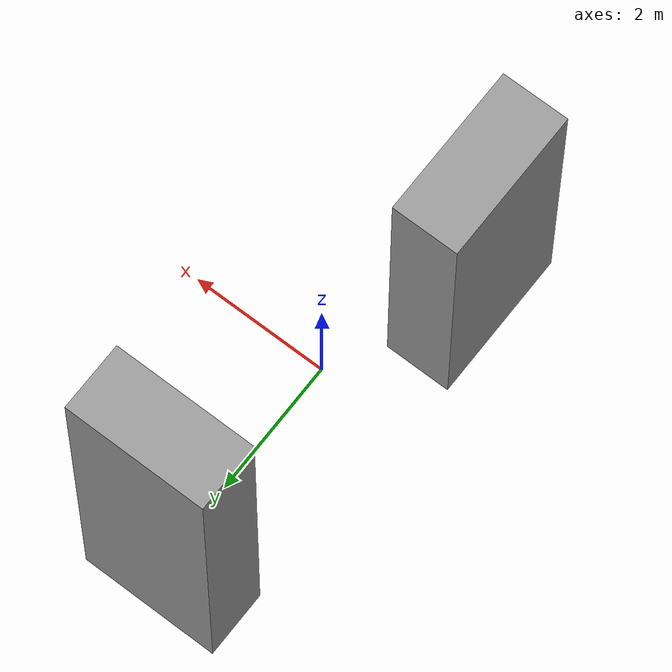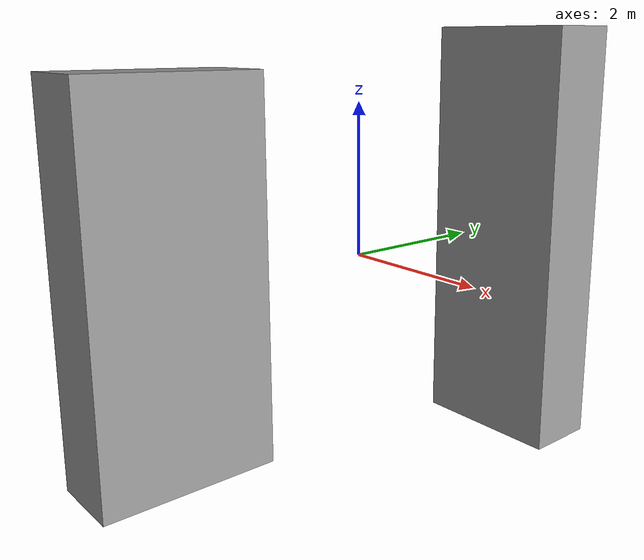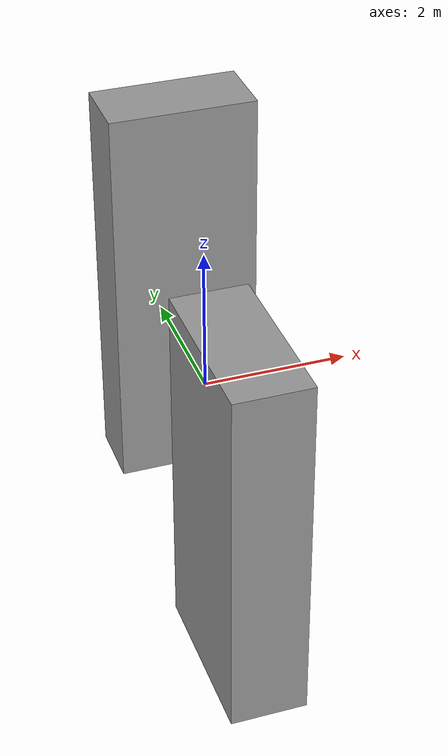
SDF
<?xml version='1.0'?>
<sdf version='1.6'>
  <model name='a_box'>
    <link name='link_0'>
      <pose frame=''>0.43035 2.62467 0 0 -0 0</pose>
      <inertial>
        <mass>12.4039</mass>
        <inertia>
          <ixx>36.9232</ixx>
          <ixy>0</ixy>
          <ixz>0</ixz>
          <iyy>40.4699</iyy>
          <iyz>0</iyz>
          <izz>5.61401</izz>
        </inertia>
        <pose frame=''>0 0 0 0 -0 0</pose>
      </inertial>
      <gravity>1</gravity>
      <self_collide>0</self_collide>
      <kinematic>0</kinematic>
      <visual name='visual'>
        <pose frame=''>0 0 0 0 -0 0</pose>
        <geometry>
          <box>
            <size>2.10504 1 5.89246</size>
          </box>
        </geometry>
        <material>
          <lighting>1</lighting>
          <script>
            <uri>file://media/materials/scripts/gazebo.material</uri>
            <name>Gazebo/Grey</name>
          </script>
          <ambient>0.3 0.3 0.3 1</ambient>
          <diffuse>0.7 0.7 0.7 1</diffuse>
          <specular>0.01 0.01 0.01 1</specular>
          <emissive>0 0 0 1</emissive>
          <shader type='vertex'>
            <normal_map>__default__</normal_map>
          </shader>
        </material>
        <transparency>0</transparency>
        <cast_shadows>1</cast_shadows>
      </visual>
      <collision name='collision'>
        <laser_retro>0</laser_retro>
        <max_contacts>10</max_contacts>
        <pose frame=''>0 0 0 0 -0 0</pose>
        <geometry>
          <box>
            <size>2.10504 1 5.89246</size>
          </box>
        </geometry>
        <surface>
          <friction>
            <ode>
              <mu>1</mu>
              <mu2>1</mu2>
              <fdir1>0 0 0</fdir1>
              <slip1>0</slip1>
              <slip2>0</slip2>
            </ode>
            <torsional>
              <coefficient>1</coefficient>
              <patch_radius>0</patch_radius>
              <surface_radius>0</surface_radius>
              <use_patch_radius>1</use_patch_radius>
              <ode>
                <slip>0</slip>
              </ode>
            </torsional>
          </friction>
          <bounce>
            <restitution_coefficient>0</restitution_coefficient>
            <threshold>1e+06</threshold>
          </bounce>
          <contact>
            <collide_without_contact>0</collide_without_contact>
            <collide_without_contact_bitmask>1</collide_without_contact_bitmask>
            <collide_bitmask>1</collide_bitmask>
            <ode>
              <soft_cfm>0</soft_cfm>
              <soft_erp>0.2</soft_erp>
              <kp>1e+13</kp>
              <kd>1</kd>
              <max_vel>0.01</max_vel>
              <min_depth>0</min_depth>
            </ode>
            <bullet>
              <split_impulse>1</split_impulse>
              <split_impulse_penetration_threshold>-0.01</split_impulse_penetration_threshold>
              <soft_cfm>0</soft_cfm>
              <soft_erp>0.2</soft_erp>
              <kp>1e+13</kp>
              <kd>1</kd>
            </bullet>
          </contact>
        </surface>
      </collision>
    </link>
    <link name='link_2'>
      <pose frame=''>-0.430355 -2.62467 0 0 -0 0</pose>
      <inertial>
        <mass>11.0475</mass>
        <inertia>
          <ixx>26.6284</ixx>
          <ixy>0</ixy>
          <ixz>0</ixz>
          <iyy>22.827</iyy>
          <iyz>0</iyz>
          <izz>5.64269</izz>
        </inertia>
        <pose frame=''>0 0 0 0 -0 0</pose>
      </inertial>
      <visual name='visual'>
        <pose frame=''>0 0 0 0 -0 0</pose>
        <geometry>
          <box>
            <size>1 2.26473 4.87801</size>
          </box>
        </geometry>
        <material>
          <lighting>1</lighting>
          <script>
            <uri>file://media/materials/scripts/gazebo.material</uri>
            <name>Gazebo/Grey</name>
          </script>
          <ambient>0.3 0.3 0.3 1</ambient>
          <diffuse>0.7 0.7 0.7 1</diffuse>
          <specular>0.01 0.01 0.01 1</specular>
          <emissive>0 0 0 1</emissive>
        </material>
        <transparency>0</transparency>
        <cast_shadows>1</cast_shadows>
      </visual>
      <collision name='collision'>
        <laser_retro>0</laser_retro>
        <max_contacts>10</max_contacts>
        <pose frame=''>0 0 0 0 -0 0</pose>
        <geometry>
          <box>
            <size>1 2.26473 4.87801</size>
          </box>
        </geometry>
        <surface>
          <friction>
            <ode>
              <mu>1</mu>
              <mu2>1</mu2>
              <fdir1>0 0 0</fdir1>
              <slip1>0</slip1>
              <slip2>0</slip2>
            </ode>
            <torsional>
              <coefficient>1</coefficient>
              <patch_radius>0</patch_radius>
              <surface_radius>0</surface_radius>
              <use_patch_radius>1</use_patch_radius>
              <ode>
                <slip>0</slip>
              </ode>
            </torsional>
          </friction>
          <bounce>
            <restitution_coefficient>0</restitution_coefficient>
            <threshold>1e+06</threshold>
          </bounce>
          <contact>
            <collide_without_contact>0</collide_without_contact>
            <collide_without_contact_bitmask>1</collide_without_contact_bitmask>
            <collide_bitmask>1</collide_bitmask>
            <ode>
              <soft_cfm>0</soft_cfm>
              <soft_erp>0.2</soft_erp>
              <kp>1e+13</kp>
              <kd>1</kd>
              <max_vel>0.01</max_vel>
              <min_depth>0</min_depth>
            </ode>
            <bullet>
              <split_impulse>1</split_impulse>
              <split_impulse_penetration_threshold>-0.01</split_impulse_penetration_threshold>
              <soft_cfm>0</soft_cfm>
              <soft_erp>0.2</soft_erp>
              <kp>1e+13</kp>
              <kd>1</kd>
            </bullet>
          </contact>
        </surface>
      </collision>
    </link>
    <static>0</static>
    <allow_auto_disable>1</allow_auto_disable>
  </model>
</sdf>
